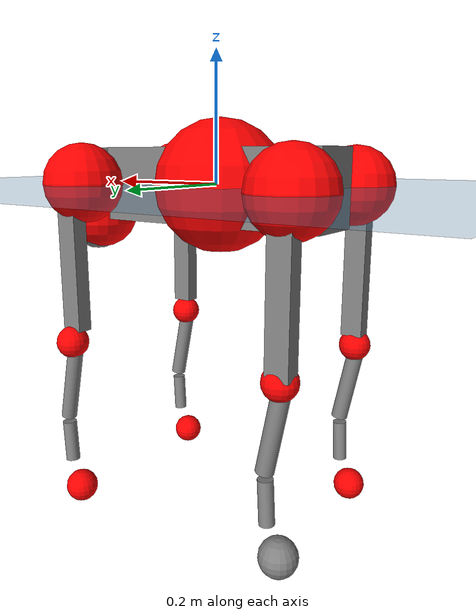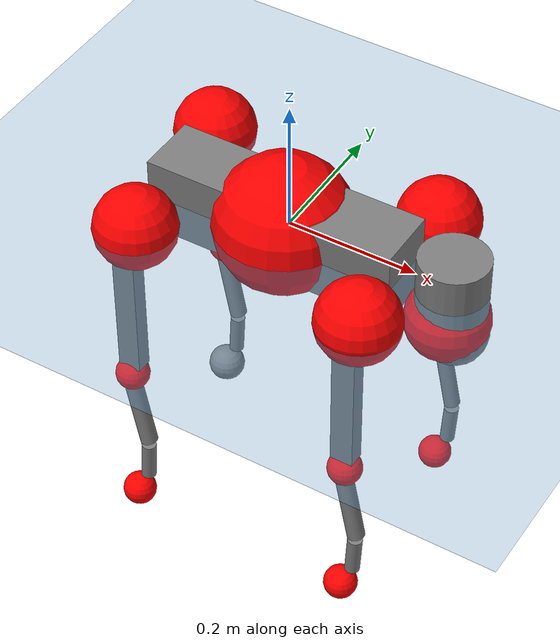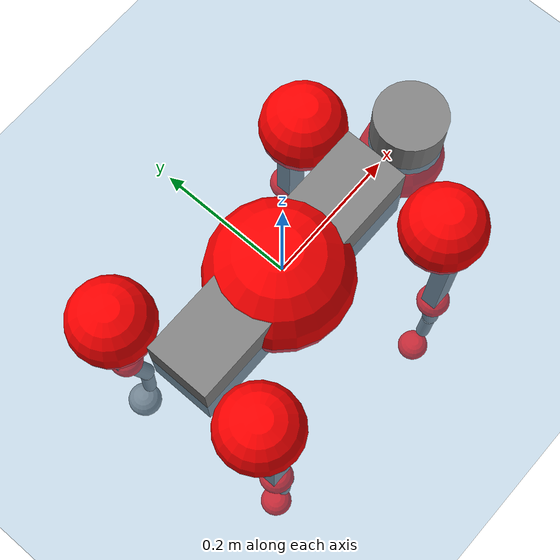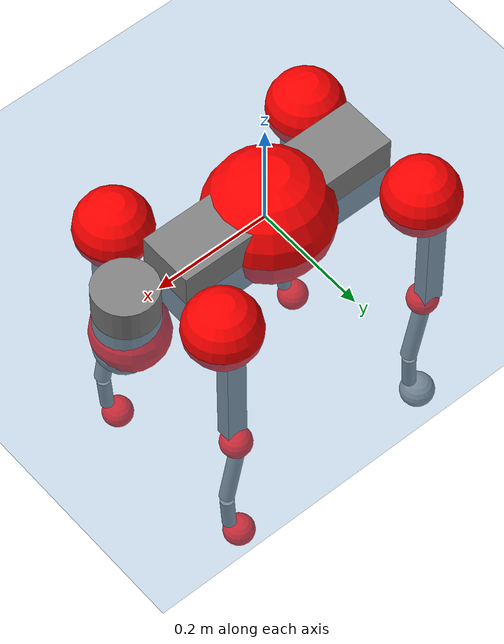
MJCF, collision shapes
<mujoco model="go2">
  <compiler angle="radian" assetdir="assets" balanceinertia="true" inertiafromgeom="false"/>

  <option timestep="0.005" density="1.2" viscosity="2e-05"/>

  <size nkey="1"/>

  <visual>
    <quality shadowsize="8192"/>
    <map shadowclip="0.5"/>
  </visual>

  <default>
    <default class="/">
      <geom contype="0" conaffinity="0" group="1" solref="-1000 -80"/>
      <site size="0.01 0.005 0.005" group="5"/>
      <general forcelimited="true" biastype="affine" gainprm="20" biasprm="0 -20 -0.5"/>
      <default class="go2">
        <joint armature="0.01" damping="0.01" frictionloss="0.2"/>
        <geom condim="1" margin="0.001"/>
        <default class="visual">
          <geom type="mesh" group="2"/>
        </default>
        <default class="collision">
          <geom group="3"/>
          <default class="foot">
            <geom size="0.022 0 0" condim="6" priority="1" friction="0.8 0.02 0.01" solimp="0.015 1 0.022"/>
          </default>
        </default>
        <default class="reward_collision_sphere">
          <geom group="5" rgba="1 0 0 1"/>
        </default>
      </default>
    </default>
  </default>

  <asset>
    <texture type="skybox" colorspace="auto" name="//unnamed_texture_0" builtin="gradient" rgb1="0.95 0.95 0.95" rgb2="0.95 0.95 0.95" width="100" height="600"/>
    <texture type="2d" colorspace="auto" name="texplane" builtin="checker" rgb1="0.345 0.575 0.748" rgb2="0.345 0.575 0.748" markrgb="1 1 1" width="512" height="512"/>
    <material name="MatPlane" class="/" texture="texplane" texuniform="true" texrepeat="2 2" specular="0.9"/>
    <material name="metal" class="/" rgba="0.9 0.95 0.95 1"/>
    <material name="black" class="/" rgba="0 0 0 1"/>
    <material name="white" class="/"/>
    <material name="gray" class="/" rgba="0.671705 0.692426 0.77427 1"/>
    <mesh name="base_0" class="/" file="base_0.obj"/>
    <mesh name="base_1" class="/" file="base_1.obj"/>
    <mesh name="base_2" class="/" file="base_2.obj"/>
    <mesh name="base_3" class="/" file="base_3.obj"/>
    <mesh name="base_4" class="/" file="base_4.obj"/>
    <mesh name="hip_0" class="/" file="hip_0.obj"/>
    <mesh name="hip_1" class="/" file="hip_1.obj"/>
    <mesh name="thigh_0" class="/" file="thigh_0.obj"/>
    <mesh name="thigh_1" class="/" file="thigh_1.obj"/>
    <mesh name="thigh_mirror_0" class="/" file="thigh_mirror_0.obj"/>
    <mesh name="thigh_mirror_1" class="/" file="thigh_mirror_1.obj"/>
    <mesh name="calf_0" class="/" file="calf_0.obj"/>
    <mesh name="calf_1" class="/" file="calf_1.obj"/>
    <mesh name="calf_mirror_0" class="/" file="calf_mirror_0.obj"/>
    <mesh name="calf_mirror_1" class="/" file="calf_mirror_1.obj"/>
    <mesh name="foot" class="/" file="foot.obj"/>
  </asset>

  <worldbody>
    <geom name="floor" class="/" size="100 100 0.125" type="plane" group="0" material="MatPlane"/>
    <light name="toplight_shadow" class="/" pos="0 0 5" dir="0.0990148 0.0990148 -0.990148" type="directional" ambient="0.04 0.04 0.04" diffuse="0.55 0.55 0.55" specular="0.12 0.12 0.12"/>
    <light name="toplight_fill" class="/" pos="0 0 5" dir="0.0990148 0.0990148 -0.990148" type="directional" castshadow="false" ambient="0.04 0.04 0.04" diffuse="0.3 0.3 0.3" specular="0.08 0.08 0.08"/>
    <body name="trunk" childclass="go2" pos="-0.00778882 -0.00135857 -0.00190185" quat="1 0.000135304 5.87181e-05 -0.00014136">
      <inertial pos="0.0188977 -0.00205125 -0.00645467" quat="-0.0115166 0.709454 0.00725373 0.704621" mass="7.81536" diaginertia="0.0630711 0.0766259 0.0576935"/>
      <joint name="//unnamed_joint_0" type="free" armature="0" damping="0" frictionloss="0"/>
      <geom name="//unnamed_geom_1" class="visual" material="black" mesh="base_0"/>
      <geom name="//unnamed_geom_2" class="visual" material="black" mesh="base_1"/>
      <geom name="//unnamed_geom_3" class="visual" material="black" mesh="base_2"/>
      <geom name="//unnamed_geom_4" class="visual" material="white" mesh="base_3"/>
      <geom name="//unnamed_geom_5" class="visual" material="gray" mesh="base_4"/>
      <geom name="trunk_1" class="collision" size="0.194737 0.0483995 0.0590111" type="box"/>
      <geom name="trunk_2" class="collision" size="0.0517641 0.0465877" pos="0.266414 0 0.0119191" type="cylinder"/>
      <geom name="trunk_3" class="collision" size="0.0486583" pos="0.273893 0 -0.0715144"/>
      <geom name="//unnamed_geom_9" class="reward_collision_sphere" size="0.103528"/>
      <geom name="//unnamed_geom_10" class="reward_collision_sphere" size="0.0621169" pos="0.26174 0 -0.0536358"/>
      <site name="imu" pos="-0.0237305 -0.0075541 0.0968101" size="0.0103528"/>
      <camera name="track" pos="0 -1.95831 0" quat="0.707107 0.707107 0 0" mode="trackcom"/>
      <camera name="ego_camera" pos="0.291654 0 0.0536358" quat="-0.5 -0.5 0.5 0.5"/>
      <body name="FL_hip" pos="0.182653 0.046206 0.00377364" quat="0.999994 -0.000767863 0.00234048 -0.00248362">
        <inertial pos="0.00363562 0.00350035 -0.00203231" quat="0.49874 0.499 0.502979 0.499269" mass="0.728855" diaginertia="0.000610589 0.000558835 0.00110536"/>
        <joint name="FL_hip_joint" pos="0 0 0" axis="0.998582 -0.0135059 0.0514972" stiffness="0.0415741" range="-1.08442 1.04588" armature="0.0149211" damping="0.0114663" frictionloss="0.181027"/>
        <geom name="//unnamed_geom_11" class="visual" material="metal" mesh="hip_0"/>
        <geom name="//unnamed_geom_12" class="visual" material="gray" mesh="hip_1"/>
        <geom name="//unnamed_geom_13" class="collision" size="0.047623 0.0207056" pos="0 0.0783323 0" quat="0.707107 0.707107 0 0" type="cylinder"/>
        <geom name="//unnamed_geom_14" class="reward_collision_sphere" size="0.0621169" pos="0 0.0685407 0"/>
        <body name="FL_thigh" pos="0.00434658 0.0925953 0.00333847" quat="1 -0.000528924 -0.000640111 -0.000538216">
          <inertial pos="-0.00563322 -0.0210758 -0.0291874" quat="0.833638 0.0764925 -0.0244409 0.546443" mass="1.32109" diaginertia="0.00437906 0.00529802 0.00208911"/>
          <joint name="FL_thigh_joint" pos="0 0 0" axis="0.0107802 0.999865 0.0123995" stiffness="0.0218571" range="-1.60553 3.49296" armature="0.0065496" damping="0.0236645" frictionloss="0.243409"/>
          <geom name="//unnamed_geom_15" class="visual" material="metal" mesh="thigh_0"/>
          <geom name="//unnamed_geom_16" class="visual" material="gray" mesh="thigh_1"/>
          <geom name="//unnamed_geom_17" class="collision" size="0.110258 0.0126822 0.0175998" pos="0 0 -0.126938" quat="0.707107 0 0.707107 0" type="box"/>
          <body name="FL_calf" pos="0.00166004 0.0100849 -0.255828" quat="0.999997 0.000183132 0.00226973 0.00118545">
            <inertial pos="0.00343435 -0.00111917 -0.171385" quat="0.712752 -0.0322419 0.0222709 0.700321" mass="0.242586" diaginertia="0.00108548 0.00126299 0.00013224"/>
            <joint name="FL_calf_joint" pos="0 0 0" axis="0.00277556 0.999982 -0.00529113" stiffness="0.00697161" range="-2.71664 -0.863402" armature="0.0105163" damping="0.0322657" frictionloss="0.225889"/>
            <geom name="//unnamed_geom_18" class="visual" material="gray" mesh="calf_0"/>
            <geom name="//unnamed_geom_19" class="visual" material="black" mesh="calf_1"/>
            <geom name="FL_calf0" class="collision" size="0.0124234 0.0621169" pos="0.0074783 0 -0.0715144" quat="0.994493 0 -0.104807 0" type="cylinder"/>
            <geom name="//unnamed_geom_21" class="collision" size="0.0113881 0.0336467" pos="0.0186957 0 -0.176402" quat="0.999688 0 0.0249974 0" type="cylinder"/>
            <geom name="//unnamed_geom_22" class="visual" pos="0 0 -0.253876" quat="1 0 0 0" material="black" mesh="foot"/>
            <geom name="FL_foot" class="foot" size="0.0183514" pos="-0.00186957 0 -0.253876"/>
            <geom name="//unnamed_geom_24" class="reward_collision_sphere" size="0.0258821"/>
            <geom name="//unnamed_geom_25" class="reward_collision_sphere" size="0.0258821" pos="-0.00186957 0 -0.253876"/>
            <site name="FL_foot" class="foot" pos="-0.00186957 0 -0.253876" size="0.0103528"/>
          </body>
        </body>
      </body>
      <body name="FR_hip" pos="0.19066 -0.0551003 0.00685189" quat="1 -0.000113732 -0.000850761 -0.000351573">
        <inertial pos="-0.0145883 -0.00190763 0.00842983" quat="0.493974 0.498758 0.516255 0.490623" mass="0.679752" diaginertia="0.000546614 0.000502867 0.00103099"/>
        <joint name="FR_hip_joint" pos="0 0 0" axis="0.999269 0.0273955 0.0266552" stiffness="0.0115929" range="-0.876694 1.07974" armature="0.0107577" damping="0.00569114" frictionloss="0.278048"/>
        <geom name="//unnamed_geom_26" class="visual" pos="0 -1.85342e-09 -7.94969e-08" quat="4.63268e-05 1 0 0" material="metal" mesh="hip_0"/>
        <geom name="//unnamed_geom_27" class="visual" pos="0 -3.00461e-09 1.96626e-07" quat="4.63268e-05 1 0 0" material="gray" mesh="hip_1"/>
        <geom name="//unnamed_geom_28" class="collision" size="0.047623 0.0207056" pos="0 -0.0783323 0" quat="0.707107 0.707107 0 0" type="cylinder"/>
        <geom name="//unnamed_geom_29" class="reward_collision_sphere" size="0.0621169" pos="0 -0.0685407 0"/>
        <body name="FR_thigh" pos="-0.000605271 -0.0934964 -0.00365134" quat="1 -1.86449e-07 3.57404e-07 -1.35319e-06">
          <inertial pos="-0.000702555 0.0111713 -0.0389452" quat="0.551639 -0.0189253 0.0860436 0.829417" mass="1.26313" diaginertia="0.00419017 0.00529883 0.00210417"/>
          <joint name="FR_thigh_joint" pos="0 0 0" axis="-0.0293085 -0.99957 -0.000608148" range="-3.52308 1.51756" armature="0.0103881" damping="0.0357844" frictionloss="0.217147"/>
          <geom name="//unnamed_geom_30" class="visual" material="metal" mesh="thigh_mirror_0"/>
          <geom name="//unnamed_geom_31" class="visual" material="gray" mesh="thigh_mirror_1"/>
          <geom name="//unnamed_geom_32" class="collision" size="0.110258 0.0126822 0.0175998" pos="0 0 -0.126938" quat="0.707107 0 0.707107 0" type="box"/>
          <body name="FR_calf" pos="-6.52405e-05 -0.000504188 -0.260828" quat="0.999988 0.00301393 0.00361845 -0.00100561">
            <inertial pos="-0.00491917 0.00500978 -0.175384" quat="0.702909 -0.00517418 -0.00385381 0.71125" mass="0.285921" diaginertia="0.00100901 0.0011778 0.000110471"/>
            <joint name="FR_calf_joint" pos="0 0 0" axis="-0.00250999 -0.999988 0.00413133" range="1.01472 2.68524" armature="0.0111939" damping="0" frictionloss="0.128817"/>
            <geom name="//unnamed_geom_33" class="visual" material="gray" mesh="calf_mirror_0"/>
            <geom name="//unnamed_geom_34" class="visual" material="black" mesh="calf_mirror_1"/>
            <geom name="FR_calf0" class="collision" size="0.0134587 0.0621169" pos="0.00934787 0 -0.0715144" quat="0.995004 0 -0.0998334 0" type="cylinder"/>
            <geom name="//unnamed_geom_36" class="collision" size="0.0113881 0.0336467" pos="0.0186957 0 -0.176402" quat="0.999688 0 0.0249974 0" type="cylinder"/>
            <geom name="//unnamed_geom_37" class="visual" pos="0 0 -0.253876" quat="1 0 0 0" material="black" mesh="foot"/>
            <geom name="FR_foot" class="foot" size="0.0234687" pos="-0.00186957 0 -0.253876"/>
            <geom name="//unnamed_geom_39" class="reward_collision_sphere" size="0.0258821"/>
            <geom name="//unnamed_geom_40" class="reward_collision_sphere" size="0.0258821" pos="-0.00186957 0 -0.253876"/>
            <site name="FR_foot" class="foot" pos="-0.00186957 0 -0.253876" size="0.0103528"/>
          </body>
        </body>
      </body>
      <body name="RL_hip" pos="-0.191868 0.0528073 0.00269708" quat="1 0.000123384 0.00021725 0.000181219">
        <inertial pos="-0.00385504 0.0123317 0.000882089" quat="0.531647 0.503443 0.487492 0.475655" mass="0.769634" diaginertia="0.000625226 0.0005301 0.00124822"/>
        <joint name="RL_hip_joint" pos="0 0 0" axis="-0.999949 -0.00885081 -0.00486371" stiffness="0.00324336" range="-1.14636 1.02275" armature="0.0106523" damping="0.00227647" frictionloss="0.215504"/>
        <geom name="//unnamed_geom_41" class="visual" pos="2.23992e-09 0 4.39076e-07" quat="4.63268e-05 0 1 0" material="metal" mesh="hip_0"/>
        <geom name="//unnamed_geom_42" class="visual" pos="3.63118e-09 0 3.89398e-07" quat="4.63268e-05 0 1 0" material="gray" mesh="hip_1"/>
        <geom name="//unnamed_geom_43" class="collision" size="0.047623 0.0207056" pos="0 0.0783323 0" quat="0.707107 0.707107 0 0" type="cylinder"/>
        <geom name="//unnamed_geom_44" class="reward_collision_sphere" size="0.0621169" pos="0 0.0685407 0"/>
        <body name="RL_thigh" pos="-0.00324761 0.0919744 0.00304058" quat="1 8.51161e-05 -0.000509543 0.000212013">
          <inertial pos="-0.00281855 -0.0311041 -0.037035" quat="0.829395 0.0697844 0.00555902 0.554259" mass="1.2046" diaginertia="0.00419999 0.00502649 0.00222407"/>
          <joint name="RL_thigh_joint" pos="0 0 0" axis="0.0408919 0.99916 0.00280246" stiffness="0.0285334" range="-0.622034 4.45594" armature="0.00604223" damping="0.00459925" frictionloss="0.135119"/>
          <geom name="//unnamed_geom_45" class="visual" material="metal" mesh="thigh_0"/>
          <geom name="//unnamed_geom_46" class="visual" material="gray" mesh="thigh_1"/>
          <geom name="//unnamed_geom_47" class="collision" size="0.110258 0.0126822 0.0175998" pos="0 0 -0.126938" quat="0.707107 0 0.707107 0" type="box"/>
          <body name="RL_calf" pos="0.00433438 -0.00667438 -0.244018" quat="0.999987 -0.00406361 0.000879503 -0.00288068">
            <inertial pos="0.00759523 -0.000328949 -0.179492" quat="0.711112 0.00981953 -0.0178945 0.702783" mass="0.298327" diaginertia="0.00105227 0.0013662 0.000131889"/>
            <joint name="RL_calf_joint" pos="0 0 0" axis="0.00573503 0.999983 -0.000463014" stiffness="0.0117476" range="-2.71644 -0.751135" armature="0.0105342" damping="0.0107956" frictionloss="0.270072"/>
            <geom name="//unnamed_geom_48" class="visual" material="gray" mesh="calf_0"/>
            <geom name="//unnamed_geom_49" class="visual" material="black" mesh="calf_1"/>
            <geom name="RL_calf0" class="collision" size="0.0134587 0.0621169" pos="0.00934787 0 -0.0715144" quat="0.995004 0 -0.0998334 0" type="cylinder"/>
            <geom name="//unnamed_geom_51" class="collision" size="0.0113881 0.0336467" pos="0.0186957 0 -0.176402" quat="0.999688 0 0.0249974 0" type="cylinder"/>
            <geom name="//unnamed_geom_52" class="visual" pos="0 0 -0.253876" quat="1 0 0 0" material="black" mesh="foot"/>
            <geom name="RL_foot" class="foot" size="0.0286463" pos="-0.00186957 0 -0.253876"/>
            <geom name="//unnamed_geom_54" class="reward_collision_sphere" size="0.0258821"/>
            <geom name="//unnamed_geom_55" class="reward_collision_sphere" size="0.0258821" pos="-0.00186957 0 -0.253876"/>
            <site name="RL_foot" class="foot" pos="-0.00186957 0 -0.253876" size="0.0103528"/>
          </body>
        </body>
      </body>
      <body name="RR_hip" pos="-0.171686 -0.0470255 0.000579502" quat="1 1.90709e-05 -0.000324729 -0.000228148">
        <inertial pos="-0.000291175 -0.00482773 0.000992779" quat="0.486499 0.48331 0.483345 0.544158" mass="0.736957" diaginertia="0.000594945 0.000499614 0.0010805"/>
        <joint name="RR_hip_joint" pos="0 0 0" axis="-0.99887 -0.0034747 0.0474012" range="-1.05359 1.03815" armature="0.0110828" damping="0" frictionloss="0.222199"/>
        <geom name="//unnamed_geom_56" class="visual" pos="-2.23838e-09 -1.85342e-09 5.18573e-07" quat="2.14617e-09 4.63268e-05 4.63268e-05 -1" material="metal" mesh="hip_0"/>
        <geom name="//unnamed_geom_57" class="visual" pos="-3.63498e-09 -3.00461e-09 1.92772e-07" quat="2.14617e-09 4.63268e-05 4.63268e-05 -1" material="gray" mesh="hip_1"/>
        <geom name="//unnamed_geom_58" class="collision" size="0.047623 0.0207056" pos="0 -0.0783323 0" quat="0.707107 0.707107 0 0" type="cylinder"/>
        <geom name="//unnamed_geom_59" class="reward_collision_sphere" size="0.0621169" pos="0 -0.0685407 0"/>
        <body name="RR_thigh" pos="0.000804973 -0.0937351 -0.00800593" quat="1 -7.552e-05 0.000190484 0.000525306">
          <inertial pos="-0.0031399 0.0199493 -0.0392991" quat="0.513395 -0.0450148 0.0903453 0.852195" mass="1.2921" diaginertia="0.00421316 0.00488884 0.00186808"/>
          <joint name="RR_thigh_joint" pos="0 0 0" axis="-0.00208255 -0.999997 -0.00143866" stiffness="0.0267441" range="-4.52018 0.504361" armature="0.0071211" damping="0.0439" frictionloss="0.234431"/>
          <geom name="//unnamed_geom_60" class="visual" material="metal" mesh="thigh_mirror_0"/>
          <geom name="//unnamed_geom_61" class="visual" material="gray" mesh="thigh_mirror_1"/>
          <geom name="//unnamed_geom_62" class="collision" size="0.110258 0.0126822 0.0175998" pos="0 0 -0.126938" quat="0.707107 0 0.707107 0" type="box"/>
          <body name="RR_calf" pos="-0.00150425 -0.0031399 -0.255724" quat="0.999999 -8.6941e-06 -0.000198343 0.00115142">
            <inertial pos="0.0135023 0.0102753 -0.177417" quat="0.697091 -0.00678745 0.00390875 0.71694" mass="0.238983" diaginertia="0.00110001 0.00117055 0.000124864"/>
            <joint name="RR_calf_joint" pos="0 0 0" axis="0.00365978 -0.999935 0.0107916" range="0.857551 2.54543" armature="0.0100825" damping="0.00634394" frictionloss="0.112809"/>
            <geom name="//unnamed_geom_63" class="visual" material="gray" mesh="calf_mirror_0"/>
            <geom name="//unnamed_geom_64" class="visual" material="black" mesh="calf_mirror_1"/>
            <geom name="RR_calf0" class="collision" size="0.0134587 0.0621169" pos="0.00934787 0 -0.0715144" quat="0.995004 0 -0.0998334 0" type="cylinder"/>
            <geom name="//unnamed_geom_66" class="collision" size="0.0113881 0.0336467" pos="0.0186957 0 -0.176402" quat="0.999688 0 0.0249974 0" type="cylinder"/>
            <geom name="//unnamed_geom_67" class="visual" pos="0 0 -0.253876" quat="1 0 0 0" material="black" mesh="foot"/>
            <geom name="RR_foot" class="foot" size="0.015272" pos="-0.00186957 0 -0.253876"/>
            <geom name="//unnamed_geom_69" class="reward_collision_sphere" size="0.0258821"/>
            <geom name="//unnamed_geom_70" class="reward_collision_sphere" size="0.0258821" pos="-0.00186957 0 -0.253876"/>
            <site name="RR_foot" class="foot" pos="-0.00186957 0 -0.253876" size="0.0103528"/>
          </body>
        </body>
      </body>
    </body>
  </worldbody>

  <contact>
    <pair class="/" geom1="floor" geom2="FL_foot" name="//unnamed_contact_0"/>
    <pair class="/" geom1="floor" geom2="FR_foot" name="//unnamed_contact_1"/>
    <pair class="/" geom1="floor" geom2="RL_foot" name="//unnamed_contact_2"/>
    <pair class="/" geom1="floor" geom2="RR_foot" name="//unnamed_contact_3"/>
  </contact>

  <actuator>
    <general name="FL_hip" class="/" joint="FL_hip_joint" forcerange="-24.8602 24.8602" gainprm="20.9762" biasprm="0 -20.9762 -0.513297"/>
    <general name="FL_thigh" class="/" joint="FL_thigh_joint" forcerange="-30.8981 30.8981" gainprm="20.9762" biasprm="0 -20.9762 -0.513297"/>
    <general name="FL_calf" class="/" joint="FL_calf_joint" forcerange="-43.7675 43.7675" gainprm="20.9762" biasprm="0 -20.9762 -0.513297"/>
    <general name="FR_hip" class="/" joint="FR_hip_joint" forcerange="-24 24" gainprm="20.9762" biasprm="0 -20.9762 -0.513297"/>
    <general name="FR_thigh" class="/" joint="FR_thigh_joint" forcerange="-25.9604 25.9604" gainprm="20.9762" biasprm="0 -20.9762 -0.513297"/>
    <general name="FR_calf" class="/" joint="FR_calf_joint" forcerange="-40.009 40.009" gainprm="20.9762" biasprm="0 -20.9762 -0.513297"/>
    <general name="RL_hip" class="/" joint="RL_hip_joint" forcerange="-24.0802 24.0802" gainprm="20.9762" biasprm="0 -20.9762 -0.513297"/>
    <general name="RL_thigh" class="/" joint="RL_thigh_joint" forcerange="-20.7552 20.7552" gainprm="20.9762" biasprm="0 -20.9762 -0.513297"/>
    <general name="RL_calf" class="/" joint="RL_calf_joint" forcerange="-52.8155 52.8155" gainprm="20.9762" biasprm="0 -20.9762 -0.513297"/>
    <general name="RR_hip" class="/" joint="RR_hip_joint" forcerange="-22.7878 22.7878" gainprm="20.9762" biasprm="0 -20.9762 -0.513297"/>
    <general name="RR_thigh" class="/" joint="RR_thigh_joint" forcerange="-24.1719 24.1719" gainprm="20.9762" biasprm="0 -20.9762 -0.513297"/>
    <general name="RR_calf" class="/" joint="RR_calf_joint" forcerange="-64.9032 64.9032" gainprm="20.9762" biasprm="0 -20.9762 -0.513297"/>
  </actuator>

  <sensor>
    <gyro site="imu" name="imu_angular_velocity"/>
    <velocimeter site="imu" name="imu_linear_velocity"/>
    <framelinvel objtype="site" objname="FL_foot" name="FL_foot_global_linear_velocity"/>
    <framelinvel objtype="site" objname="FR_foot" name="FR_foot_global_linear_velocity"/>
    <framelinvel objtype="site" objname="RL_foot" name="RL_foot_global_linear_velocity"/>
    <framelinvel objtype="site" objname="RR_foot" name="RR_foot_global_linear_velocity"/>
  </sensor>

  <keyframe>
    <key name="home" qpos="0 0 0.325 1 0 0 0 0.1 0.8 -1.5 -0.1 -0.8 1.5 -0.1 0.8 -1.5 0.1 -0.8 1.5"/>
  </keyframe>
</mujoco>
